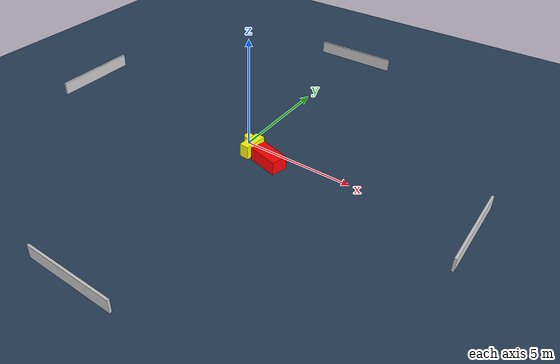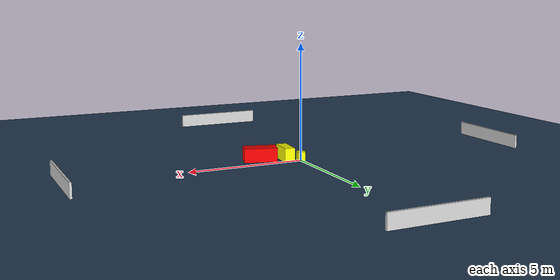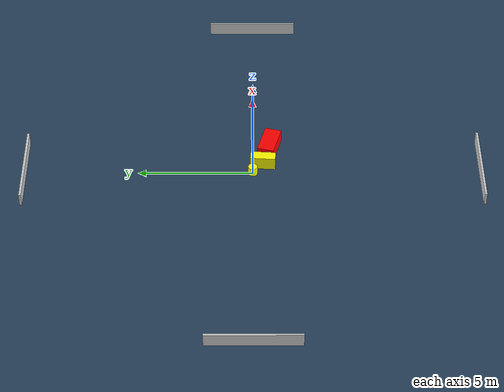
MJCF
<?xml version="1.0" ?>
<mujoco model="generated_environment">
  <option timestep="0.01" integrator="RK4" cone="elliptic"/>
  <default>
    <geom density="1"/>
  </default>
  <asset>
    <texture builtin="gradient" height="3072" name="skybox" rgb1="0.3 0.5 0.7" rgb2="0 0 0" type="skybox" width="512"/>
    <texture builtin="checker" height="300" name="groundplane" rgb1="0.2 0.3 0.4" rgb2="0.1 0.2 0.3" type="2d" width="300"/>
    <material name="groundplane" reflectance="0.2" texrepeat="5 5" texture="groundplane"/>
  </asset>
  <worldbody>
    <light dir="0 0 -1" directional="true" pos="0 0 1.5"/>
    <geom condim="3" friction="0.5 0.005 0.001" material="groundplane" name="floor" pos="0 0 0" size="0 0 0.05" type="plane"/>
    <body name="walls">
      <geom name="wall_1" condim="4" pos="-10.0 0.0 0.3" rgba="0.800000011920929 0.800000011920929 0.800000011920929 1.0" size="0.05 2.0 0.3" type="box"/>
      <geom name="wall_2" condim="4" pos="10.0 0.0 0.3" rgba="0.800000011920929 0.800000011920929 0.800000011920929 1.0" size="0.05 2.0 0.3" type="box"/>
      <geom name="wall_3" condim="4" pos="0.0 -10.0 0.3" rgba="0.800000011920929 0.800000011920929 0.800000011920929 1.0" size="2.0 0.05 0.3" type="box"/>
      <geom name="wall_4" condim="4" pos="0.0 10.0 0.3" rgba="0.800000011920929 0.800000011920929 0.800000011920929 1.0" size="2.0 0.05 0.3" type="box"/>
    </body>
    <body name="robot">
      <joint name="joint_x" type="slide" pos="0 0 0" axis="1 0 0"/>
      <joint name="joint_y" type="slide" pos="0 0 0" axis="0 1 0"/>
      <geom name="robot" type="cylinder" pos="0.0 0.0 0.2" size="0.2 0.2 0.0" mass="5.0" friction="1.0 0.005 0.0001" condim="4" rgba="1.0 1.0 0.0 1.0"/>
    </body>
    <body name="obstacle_1_movable">
      <geom name="obstacle_1_movable" condim="4" pos="0.5103727459351868 -0.452022499561591 0.3" euler="0 0 175.64591060345697" friction="0.0 0.005 0.001" rgba="1.0 1.0 0.0 1.0" size="0.2224347000301666 0.54550374144584 0.3" type="box" mass="0.1"/>
      <joint type="free"/>
    </body>
    <body name="obstacle_2_static">
      <geom name="obstacle_2_static" condim="4" pos="1.5714812078889768 -0.7390400824968102 0.3" euler="0 0 164.86300847993718" friction="0.0 0.005 0.001" rgba="1.0 0.0 0.0 1.0" size="0.7019467841861615 0.36707635040510306 0.3" type="box"/>
    </body>
  </worldbody>
  <actuator>
    <motor name="actuator_x" joint="joint_x" gear="1" ctrlrange="-1 1"/>
    <motor name="actuator_y" joint="joint_y" gear="1" ctrlrange="-1 1"/>
  </actuator>
</mujoco>
